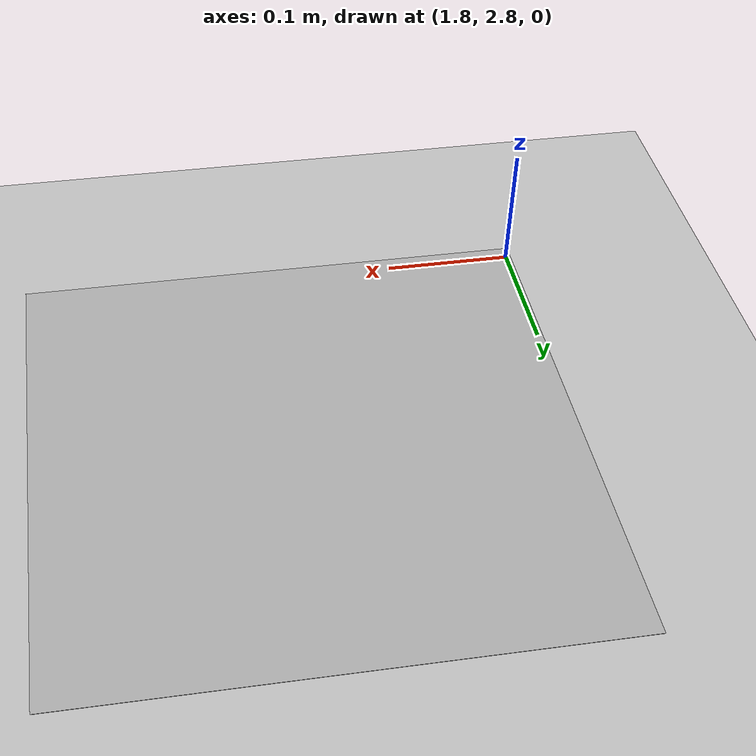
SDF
<sdf version="1.7">
 <world name="default">
  <model name="my_ground_plane">
   <static>1</static>
   <link name="link">
    <collision name="collision">
     <geometry><plane><normal>0 0 1</normal><size>100 100</size></plane></geometry>
     <surface><friction><ode><mu>100</mu><mu2>50</mu2></ode></friction></surface>
    </collision>
    <visual name="visual">
     <cast_shadows>0</cast_shadows>
     <geometry><plane><normal>0 0 1</normal><size>100 100</size></plane></geometry>
     <material>
      <script>
       <uri>model://mygroundplane/materials/scripts</uri>
       <uri>model://mygroundplane/materials/textures</uri>
       <name>MyGroundPlane/Image</name>
      </script>
     </material>
    </visual>
   </link>
  </model>
  <light name="sun" type="directional">
   <pose>0 0 10 0 -0 0</pose>
   <diffuse>0.8 0.8 0.8 1</diffuse>
   <specular>0.2 0.2 0.2 1</specular>
   <attenuation>
    <range>1000</range>
    <constant>0.9</constant>
    <linear>0.01</linear>
    <quadratic>0.001</quadratic>
   </attenuation>
   <direction>-0.5 0.1 -0.9</direction>
   <spot><inner_angle>0</inner_angle><outer_angle>0</outer_angle><falloff>0</falloff></spot>
  </light>
  <plugin name="ros_interface_plugin" filename="librotors_gazebo_ros_interface_plugin.so"/>
  <spherical_coordinates>
   <surface_model>EARTH_WGS84</surface_model>
   <latitude_deg>47.3667</latitude_deg>
   <longitude_deg>8.55</longitude_deg>
   <elevation>500</elevation>
   <heading_deg>0</heading_deg>
  </spherical_coordinates>
  <physics type="ode">
   <ode>
    <solver>
     <type>quick</type>
     <iters>1000</iters>
     <sor>1.3</sor>
     <use_dynamic_moi_rescaling>0</use_dynamic_moi_rescaling>
    </solver>
    <constraints>
     <cfm>0</cfm>
     <erp>0.2</erp>
     <contact_max_correcting_vel>100</contact_max_correcting_vel>
     <contact_surface_layer>0.001</contact_surface_layer>
    </constraints>
   </ode>
   <max_step_size>0.01</max_step_size>
   <real_time_factor>1</real_time_factor>
   <real_time_update_rate>100</real_time_update_rate>
  </physics>
  <gravity>0 0 -9.8</gravity>
  <magnetic_field>6e-06 2.3e-05 -4.2e-05</magnetic_field>
  <atmosphere type="adiabatic"/>
  <scene><ambient>0.4 0.4 0.4 1</ambient><background>0.7 0.7 0.7 1</background><shadows>1</shadows></scene>
  <model name="ArUco">
   <static>1</static>
   <link name="link">
    <collision name="collision">
     <geometry><plane><normal>0 0 1</normal><size>2 2</size></plane></geometry>
     <surface><friction><ode><mu>100</mu><mu2>50</mu2></ode></friction></surface>
    </collision>
    <visual name="visual">
     <cast_shadows>0</cast_shadows>
     <geometry><plane><normal>0 0 1</normal><size>0.4 0.4</size></plane></geometry>
     <material>
      <script>
       <uri>model://ArUco/materials/scripts</uri>
       <uri>model://ArUco/materials/textures</uri>
       <name>ArUco/Image</name>
      </script>
     </material>
    </visual>
   </link>
   <pose>2 3 0.01 0 -0 0</pose>
  </model>
 </world>
</sdf>
